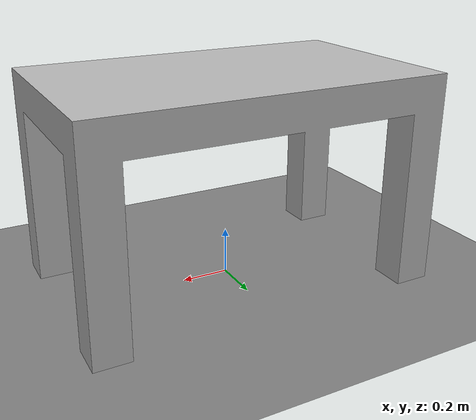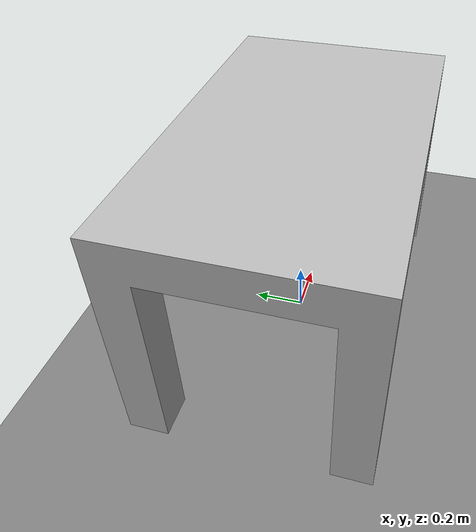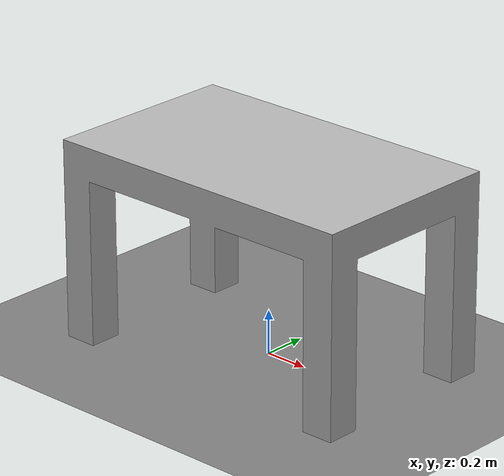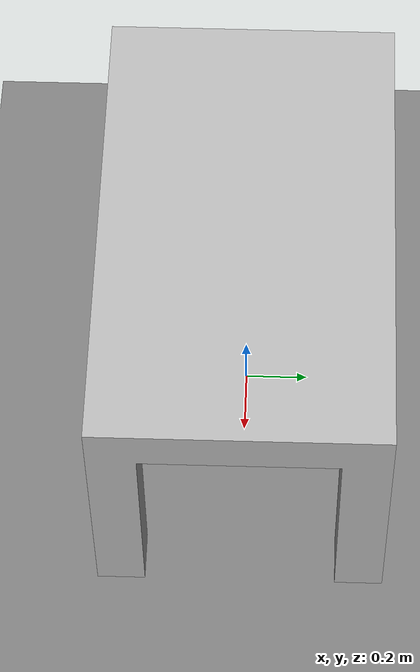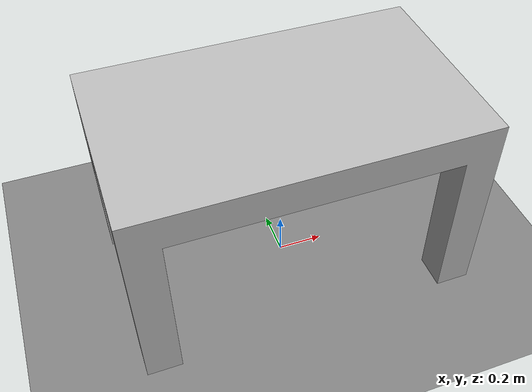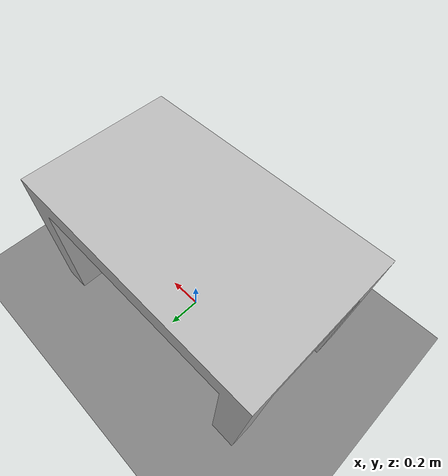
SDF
<?xml version="1.0" ?>
<sdf version="1.4">
  <world name="default">
    <model name="ground_plane">
      <static>true</static>
      <link name="link">
        <collision name="collision">
          <geometry>
            <plane>
              <normal>0 0 1</normal>
              <size>100 100</size>
            </plane>
          </geometry>
          <surface>
            <friction>
              <ode>
                <mu>50</mu>
              </ode>
              <bullet>
                <friction>1</friction>
                <friction2>1</friction2>
                <rolling_friction>0.1</rolling_friction>
              </bullet>
            </friction>
          </surface>
        </collision>
        <visual name="visual">
          <geometry>
            <plane>
              <normal>0 0 1</normal>
              <size>100 100</size>
            </plane>
          </geometry>
          <material>
              <ambient>0.4 0.4 0.4 1</ambient>
              <diffuse>0.5 0.5 0.5 1</diffuse>
              <specular>0.05 0.05 0.05 1</specular>
          </material>
        </visual>
      </link>
    </model>

    <light type="directional" name="sun">
      <cast_shadows>true</cast_shadows>
      <pose>0 0 10 0 0 0</pose>
      <diffuse>1 1 1 1</diffuse>
      <specular>0.5 0.5 0.5 1</specular>
      <attenuation>
        <range>1000</range>
        <constant>0.9</constant>
        <linear>0.01</linear>
        <quadratic>0.001</quadratic>
      </attenuation>
      <direction>-0.5 0.1 -0.9</direction>
    </light>

    <scene>
      <shadows>false</shadows>
    </scene>

    <gui fullscreen='0'>
      <camera name='user_camera'>
        <pose frame=''>0.319654 -0.235002 9.29441 0 1.5138 0.009599</pose>
        <view_controller>orbit</view_controller>
        <projection_type>perspective</projection_type>
      </camera>
    </gui>

    <physics type="ode">
      <real_time_update_rate>1000.0</real_time_update_rate>
      <max_step_size>0.001</max_step_size>
      <real_time_factor>1</real_time_factor>
      <ode>
        <solver>
          <type>quick</type>
          <iters>150</iters>
          <precon_iters>0</precon_iters>
          <sor>1.400000</sor>
          <use_dynamic_moi_rescaling>1</use_dynamic_moi_rescaling>
        </solver>
        <constraints>
          <cfm>0.00001</cfm>
          <erp>0.2</erp>
          <contact_max_correcting_vel>2000.000000</contact_max_correcting_vel>
          <contact_surface_layer>0.01000</contact_surface_layer>
        </constraints>
      </ode>
      <gravity>0 0 -9.8</gravity>
    </physics>

    <include>
      <uri>model://table</uri>
      <name>table</name>
      <pose>0.0 0.0 0 0 0 0</pose>
    </include>

  </world>
</sdf>

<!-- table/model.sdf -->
<sdf version="1.5">
  <model name="table">
    <static>true</static>
    <link name='table'>
      <pose>0.0 0.0 0 0 0 0</pose>
      <self_collide>0</self_collide>
      <kinematic>0</kinematic>
      <enable_wind>0</enable_wind>
      <visual name='table_Visual'>
        <pose>0 0 0 0 0 0</pose>
        <geometry>
        <mesh>
          <uri>meshes/table.dae</uri>
          <scale>0.03 0.03 0.03</scale>
        </mesh>
        </geometry>
      </visual>
      <collision name='table_Collision'>
        <laser_retro>0</laser_retro>
        <max_contacts>10</max_contacts>
        <pose>0 0 0 0 0 0</pose>
        <geometry>
        <mesh>
          <uri>meshes/table.dae</uri>
          <scale>0.03 0.03 0.03</scale>
        </mesh>
        </geometry>
      </collision>
    </link>
  </model>
</sdf>
